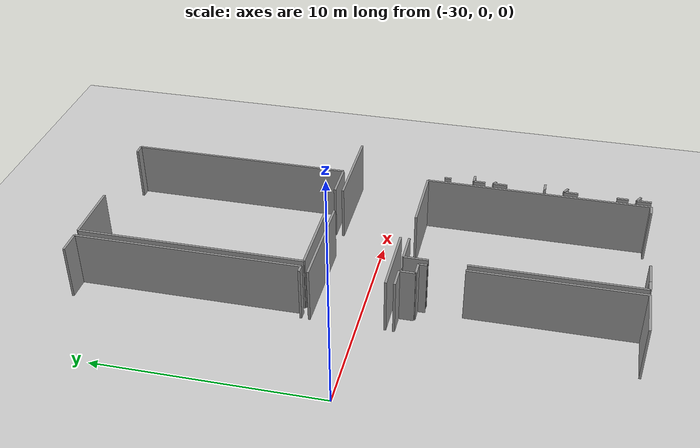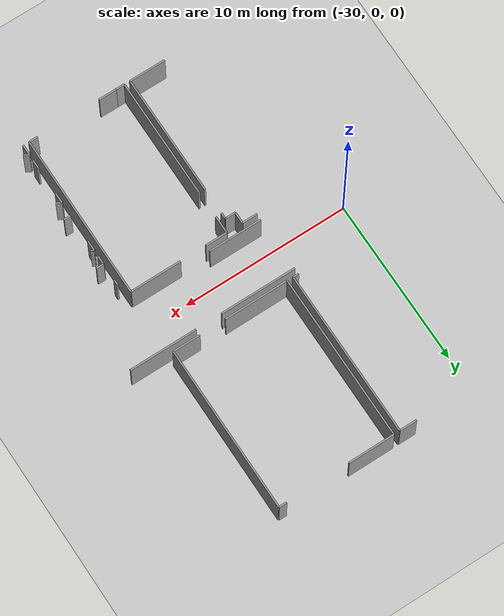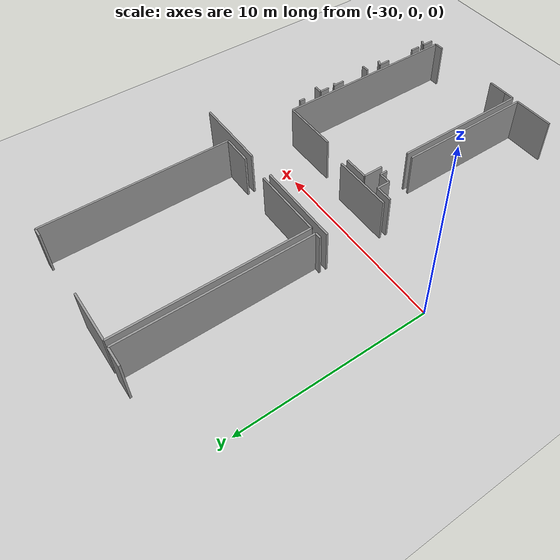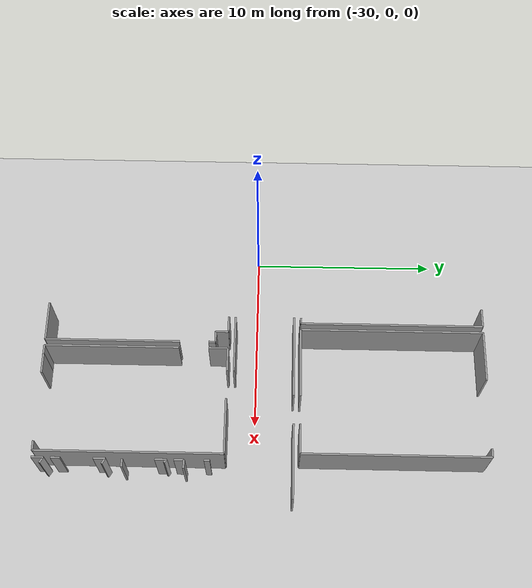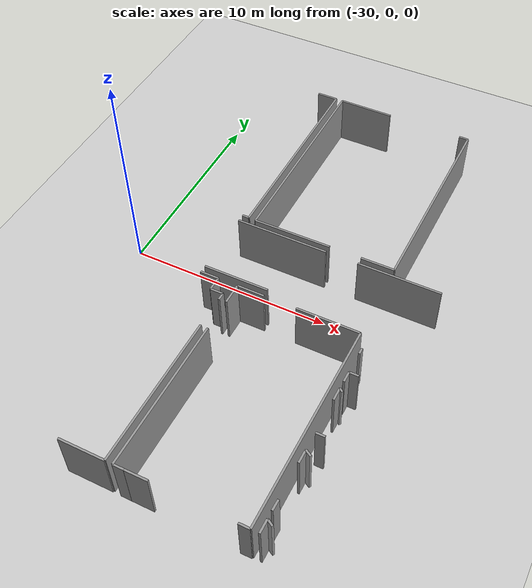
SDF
<sdf version="1.6">
 <world name="default">
  <model name="ground_plane">
   <static>1</static>
   <link name="link">
    <collision name="collision">
     <geometry><plane><normal>0 0 1</normal><size>100 100</size></plane></geometry>
     <surface><friction><ode><mu>100</mu><mu2>50</mu2></ode></friction></surface>
    </collision>
    <visual name="visual">
     <cast_shadows>0</cast_shadows>
     <geometry><plane><normal>0 0 1</normal><size>100 100</size></plane></geometry>
     <material>
      <script><uri>file://media/materials/scripts/gazebo.material</uri><name>Gazebo/Grey</name></script>
     </material>
    </visual>
   </link>
  </model>
  <model name="0510034691_Layout1">
   <static>1</static>
   <link name="Wall_22">
    <collision name="Wall_22_Collision">
     <geometry><box><size>0.912199089962 0.1 2.5</size></box></geometry>
     <pose>0.456099544981 0 1.25 0 0 0</pose>
    </collision>
    <visual name="Wall_22_Visual">
     <pose>0.456099544981 0 1.25 0 0 0</pose>
     <geometry><box><size>0.912199089962 0.1 2.5</size></box></geometry>
     <material>
      <script><uri>file://media/materials/scripts/gazebo.material</uri><name>Gazebo/Grey</name></script>
      <ambient>1 1 1 1</ambient>
     </material>
    </visual>
    <pose>31.0258267877 -13.9777320217 0 0 0 0.0</pose>
   </link>
   <link name="Wall_23">
    <collision name="Wall_23_Collision">
     <geometry><box><size>0.694730420194 0.1 2.5</size></box></geometry>
     <pose>0.347365210097 0 1.25 0 0 0</pose>
    </collision>
    <visual name="Wall_23_Visual">
     <pose>0.347365210097 0 1.25 0 0 0</pose>
     <geometry><box><size>0.694730420194 0.1 2.5</size></box></geometry>
     <material>
      <script><uri>file://media/materials/scripts/gazebo.material</uri><name>Gazebo/Grey</name></script>
      <ambient>1 1 1 1</ambient>
     </material>
    </visual>
    <pose>31.9380258776 -13.9777320217 0 0 0 -1.57079632679</pose>
   </link>
   <link name="Wall_24">
    <collision name="Wall_24_Collision">
     <geometry><box><size>0.626223340705 0.1 2.5</size></box></geometry>
     <pose>0.313111670353 0 1.25 0 0 0</pose>
    </collision>
    <visual name="Wall_24_Visual">
     <pose>0.313111670353 0 1.25 0 0 0</pose>
     <geometry><box><size>0.626223340705 0.1 2.5</size></box></geometry>
     <material>
      <script><uri>file://media/materials/scripts/gazebo.material</uri><name>Gazebo/Grey</name></script>
      <ambient>1 1 1 1</ambient>
     </material>
    </visual>
    <pose>31.9380258776 -14.6724624419 0 0 0 0.0</pose>
   </link>
   <link name="Wall_25">
    <collision name="Wall_25_Collision">
     <geometry><box><size>0.368082564376 0.1 2.5</size></box></geometry>
     <pose>0.184041282188 0 1.25 0 0 0</pose>
    </collision>
    <visual name="Wall_25_Visual">
     <pose>0.184041282188 0 1.25 0 0 0</pose>
     <geometry><box><size>0.368082564376 0.1 2.5</size></box></geometry>
     <material>
      <script><uri>file://media/materials/scripts/gazebo.material</uri><name>Gazebo/Grey</name></script>
      <ambient>1 1 1 1</ambient>
     </material>
    </visual>
    <pose>32.5642492183 -14.6724624419 0 0 0 -1.57079632679</pose>
   </link>
   <link name="Wall_26">
    <collision name="Wall_26_Collision">
     <geometry><box><size>7.34029843158 0.1 2.5</size></box></geometry>
     <pose>3.67014921579 0 1.25 0 0 0</pose>
    </collision>
    <visual name="Wall_26_Visual">
     <pose>3.67014921579 0 1.25 0 0 0</pose>
     <geometry><box><size>7.34029843158 0.1 2.5</size></box></geometry>
     <material>
      <script><uri>file://media/materials/scripts/gazebo.material</uri><name>Gazebo/Grey</name></script>
      <ambient>1 1 1 1</ambient>
     </material>
    </visual>
    <pose>32.5642492183 -16.6276468644 0 0 0 -1.57079632679</pose>
   </link>
   <link name="Wall_27">
    <collision name="Wall_27_Collision">
     <geometry><box><size>2.19337044663 0.1 2.5</size></box></geometry>
     <pose>1.09668522332 0 1.25 0 0 0</pose>
    </collision>
    <visual name="Wall_27_Visual">
     <pose>1.09668522332 0 1.25 0 0 0</pose>
     <geometry><box><size>2.19337044663 0.1 2.5</size></box></geometry>
     <material>
      <script><uri>file://media/materials/scripts/gazebo.material</uri><name>Gazebo/Grey</name></script>
      <ambient>1 1 1 1</ambient>
     </material>
    </visual>
    <pose>32.5642492183 -23.967945296 0 0 0 3.14159265359</pose>
   </link>
   <link name="Wall_29">
    <collision name="Wall_29_Collision">
     <geometry><box><size>0.520984264979 0.1 2.5</size></box></geometry>
     <pose>0.260492132489 0 1.25 0 0 0</pose>
    </collision>
    <visual name="Wall_29_Visual">
     <pose>0.260492132489 0 1.25 0 0 0</pose>
     <geometry><box><size>0.520984264979 0.1 2.5</size></box></geometry>
     <material>
      <script><uri>file://media/materials/scripts/gazebo.material</uri><name>Gazebo/Grey</name></script>
      <ambient>1 1 1 1</ambient>
     </material>
    </visual>
    <pose>33.4409873154 -23.972139607 0 0 0 3.14159265359</pose>
   </link>
   <link name="Wall_30">
    <collision name="Wall_30_Collision">
     <geometry><box><size>7.33279951193 0.1 2.5</size></box></geometry>
     <pose>3.66639975597 0 1.25 0 0 0</pose>
    </collision>
    <visual name="Wall_30_Visual">
     <pose>3.66639975597 0 1.25 0 0 0</pose>
     <geometry><box><size>7.33279951193 0.1 2.5</size></box></geometry>
     <material>
      <script><uri>file://media/materials/scripts/gazebo.material</uri><name>Gazebo/Grey</name></script>
      <ambient>1 1 1 1</ambient>
     </material>
    </visual>
    <pose>32.9200030504 -23.972139607 0 0 0 1.57079632679</pose>
   </link>
   <link name="Wall_31">
    <collision name="Wall_31_Collision">
     <geometry><box><size>1.05264495793 0.1 2.5</size></box></geometry>
     <pose>0.526322478965 0 1.25 0 0 0</pose>
    </collision>
    <visual name="Wall_31_Visual">
     <pose>0.526322478965 0 1.25 0 0 0</pose>
     <geometry><box><size>1.05264495793 0.1 2.5</size></box></geometry>
     <material>
      <script><uri>file://media/materials/scripts/gazebo.material</uri><name>Gazebo/Grey</name></script>
      <ambient>1 1 1 1</ambient>
     </material>
    </visual>
    <pose>32.9200030504 -15.0299956786 0 0 0 1.57079632679</pose>
   </link>
   <link name="Wall_32">
    <collision name="Wall_32_Collision">
     <geometry><box><size>1.32451257022 0.1 2.5</size></box></geometry>
     <pose>0.662256285111 0 1.25 0 0 0</pose>
    </collision>
    <visual name="Wall_32_Visual">
     <pose>0.662256285111 0 1.25 0 0 0</pose>
     <geometry><box><size>1.32451257022 0.1 2.5</size></box></geometry>
     <material>
      <script><uri>file://media/materials/scripts/gazebo.material</uri><name>Gazebo/Grey</name></script>
      <ambient>1 1 1 1</ambient>
     </material>
    </visual>
    <pose>32.9200030504 -13.9773507207 0 0 0 0.0</pose>
   </link>
   <link name="Wall_33">
    <collision name="Wall_33_Collision">
     <geometry><box><size>3.07735326267 0.1 2.5</size></box></geometry>
     <pose>1.53867663133 0 1.25 0 0 0</pose>
    </collision>
    <visual name="Wall_33_Visual">
     <pose>1.53867663133 0 1.25 0 0 0</pose>
     <geometry><box><size>3.07735326267 0.1 2.5</size></box></geometry>
     <material>
      <script><uri>file://media/materials/scripts/gazebo.material</uri><name>Gazebo/Grey</name></script>
      <ambient>1 1 1 1</ambient>
     </material>
    </visual>
    <pose>35.8243727599 -13.9773507207 0 0 0 0.0</pose>
   </link>
   <link name="Wall_34">
    <collision name="Wall_34_Collision">
     <geometry><box><size>9.99135717736 0.1 2.5</size></box></geometry>
     <pose>4.99567858868 0 1.25 0 0 0</pose>
    </collision>
    <visual name="Wall_34_Visual">
     <pose>4.99567858868 0 1.25 0 0 0</pose>
     <geometry><box><size>9.99135717736 0.1 2.5</size></box></geometry>
     <material>
      <script><uri>file://media/materials/scripts/gazebo.material</uri><name>Gazebo/Grey</name></script>
      <ambient>1 1 1 1</ambient>
     </material>
    </visual>
    <pose>38.9017260225 -13.9773507207 0 0 0 -1.57079632679</pose>
   </link>
   <link name="Wall_35">
    <collision name="Wall_35_Collision">
     <geometry><box><size>0.519840361982 0.1 2.5</size></box></geometry>
     <pose>0.259920180991 0 1.25 0 0 0</pose>
    </collision>
    <visual name="Wall_35_Visual">
     <pose>0.259920180991 0 1.25 0 0 0</pose>
     <geometry><box><size>0.519840361982 0.1 2.5</size></box></geometry>
     <material>
      <script><uri>file://media/materials/scripts/gazebo.material</uri><name>Gazebo/Grey</name></script>
      <ambient>1 1 1 1</ambient>
     </material>
    </visual>
    <pose>38.9017260225 -23.968707898 0 0 0 3.14159265359</pose>
   </link>
   <link name="Wall_36">
    <collision name="Wall_36_Collision">
     <geometry><box><size>1.07807048644 0.1 2.5</size></box></geometry>
     <pose>0.539035243222 0 1.25 0 0 0</pose>
    </collision>
    <visual name="Wall_36_Visual">
     <pose>0.539035243222 0 1.25 0 0 0</pose>
     <geometry><box><size>1.07807048644 0.1 2.5</size></box></geometry>
     <material>
      <script><uri>file://media/materials/scripts/gazebo.material</uri><name>Gazebo/Grey</name></script>
      <ambient>1 1 1 1</ambient>
     </material>
    </visual>
    <pose>34.5190523399 -23.968707898 0 0 0 -3.13840945283</pose>
   </link>
   <link name="Wall_39">
    <collision name="Wall_39_Collision">
     <geometry><box><size>1.03624901497 0.1 2.5</size></box></geometry>
     <pose>0.518124507486 0 1.25 0 0 0</pose>
    </collision>
    <visual name="Wall_39_Visual">
     <pose>0.518124507486 0 1.25 0 0 0</pose>
     <geometry><box><size>1.03624901497 0.1 2.5</size></box></geometry>
     <material>
      <script><uri>file://media/materials/scripts/gazebo.material</uri><name>Gazebo/Grey</name></script>
      <ambient>1 1 1 1</ambient>
     </material>
    </visual>
    <pose>30.3322402705 -0.0208444546125 0 0 0 0.0</pose>
   </link>
   <link name="Wall_40">
    <collision name="Wall_40_Collision">
     <geometry><box><size>9.98373115738 0.1 2.5</size></box></geometry>
     <pose>4.99186557869 0 1.25 0 0 0</pose>
    </collision>
    <visual name="Wall_40_Visual">
     <pose>4.99186557869 0 1.25 0 0 0</pose>
     <geometry><box><size>9.98373115738 0.1 2.5</size></box></geometry>
     <material>
      <script><uri>file://media/materials/scripts/gazebo.material</uri><name>Gazebo/Grey</name></script>
      <ambient>1 1 1 1</ambient>
     </material>
    </visual>
    <pose>31.3684892854 -0.0208444546125 0 0 0 -1.57079632679</pose>
   </link>
   <link name="Wall_41">
    <collision name="Wall_41_Collision">
     <geometry><box><size>0.337578484456 0.1 2.5</size></box></geometry>
     <pose>0.168789242228 0 1.25 0 0 0</pose>
    </collision>
    <visual name="Wall_41_Visual">
     <pose>0.168789242228 0 1.25 0 0 0</pose>
     <geometry><box><size>0.337578484456 0.1 2.5</size></box></geometry>
     <material>
      <script><uri>file://media/materials/scripts/gazebo.material</uri><name>Gazebo/Grey</name></script>
      <ambient>1 1 1 1</ambient>
     </material>
    </visual>
    <pose>31.3684892854 -10.004575612 0 0 0 3.14159265359</pose>
   </link>
   <link name="Wall_43">
    <collision name="Wall_43_Collision">
     <geometry><box><size>10.006863418 0.1 2.5</size></box></geometry>
     <pose>5.00343170899 0 1.25 0 0 0</pose>
    </collision>
    <visual name="Wall_43_Visual">
     <pose>5.00343170899 0 1.25 0 0 0</pose>
     <geometry><box><size>10.006863418 0.1 2.5</size></box></geometry>
     <material>
      <script><uri>file://media/materials/scripts/gazebo.material</uri><name>Gazebo/Grey</name></script>
      <ambient>1 1 1 1</ambient>
     </material>
    </visual>
    <pose>31.7353008465 -10.0282162739 0 0 0 1.57079632679</pose>
   </link>
   <link name="Wall_44">
    <collision name="Wall_44_Collision">
     <geometry><box><size>2.77854037978 0.1 2.5</size></box></geometry>
     <pose>1.38927018989 0 1.25 0 0 0</pose>
    </collision>
    <visual name="Wall_44_Visual">
     <pose>1.38927018989 0 1.25 0 0 0</pose>
     <geometry><box><size>2.77854037978 0.1 2.5</size></box></geometry>
     <material>
      <script><uri>file://media/materials/scripts/gazebo.material</uri><name>Gazebo/Grey</name></script>
      <ambient>1 1 1 1</ambient>
     </material>
    </visual>
    <pose>31.7353008465 -0.0213528559445 0 0 0 0.0</pose>
   </link>
   <link name="Wall_45">
    <collision name="Wall_45_Collision">
     <geometry><box><size>0.464933018125 0.1 2.5</size></box></geometry>
     <pose>0.232466509062 0 1.25 0 0 0</pose>
    </collision>
    <visual name="Wall_45_Visual">
     <pose>0.232466509062 0 1.25 0 0 0</pose>
     <geometry><box><size>0.464933018125 0.1 2.5</size></box></geometry>
     <material>
      <script><uri>file://media/materials/scripts/gazebo.material</uri><name>Gazebo/Grey</name></script>
      <ambient>1 1 1 1</ambient>
     </material>
    </visual>
    <pose>38.3604057043 -0.0213528559445 0 0 0 0.0</pose>
   </link>
   <link name="Wall_46">
    <collision name="Wall_46_Collision">
     <geometry><box><size>9.98970487303 0.1 2.5</size></box></geometry>
     <pose>4.99485243651 0 1.25 0 0 0</pose>
    </collision>
    <visual name="Wall_46_Visual">
     <pose>4.99485243651 0 1.25 0 0 0</pose>
     <geometry><box><size>9.98970487303 0.1 2.5</size></box></geometry>
     <material>
      <script><uri>file://media/materials/scripts/gazebo.material</uri><name>Gazebo/Grey</name></script>
      <ambient>1 1 1 1</ambient>
     </material>
    </visual>
    <pose>38.8253387224 -0.0213528559445 0 0 0 -1.57079632679</pose>
   </link>
   <link name="Wall_47">
    <collision name="Wall_47_Collision">
     <geometry><box><size>1.63934009507 0.1 2.5</size></box></geometry>
     <pose>0.819670047536 0 1.25 0 0 0</pose>
    </collision>
    <visual name="Wall_47_Visual">
     <pose>0.819670047536 0 1.25 0 0 0</pose>
     <geometry><box><size>1.63934009507 0.1 2.5</size></box></geometry>
     <material>
      <script><uri>file://media/materials/scripts/gazebo.material</uri><name>Gazebo/Grey</name></script>
      <ambient>1 1 1 1</ambient>
     </material>
    </visual>
    <pose>38.8253387224 -10.011057729 0 0 0 3.14159265359</pose>
   </link>
   <link name="Wall_48">
    <collision name="Wall_48_Collision">
     <geometry><box><size>3.86452371724 0.1 2.5</size></box></geometry>
     <pose>1.93226185862 0 1.25 0 0 0</pose>
    </collision>
    <visual name="Wall_48_Visual">
     <pose>1.93226185862 0 1.25 0 0 0</pose>
     <geometry><box><size>3.86452371724 0.1 2.5</size></box></geometry>
     <material>
      <script><uri>file://media/materials/scripts/gazebo.material</uri><name>Gazebo/Grey</name></script>
      <ambient>1 1 1 1</ambient>
     </material>
    </visual>
    <pose>35.5997864714 -10.011057729 0 0 0 -3.13715262357</pose>
   </link>
   <link name="Wall_54">
    <collision name="Wall_54_Collision">
     <geometry><box><size>4.56824016879 0.1 2.5</size></box></geometry>
     <pose>2.28412008439 0 1.25 0 0 0</pose>
    </collision>
    <visual name="Wall_54_Visual">
     <pose>2.28412008439 0 1.25 0 0 0</pose>
     <geometry><box><size>4.56824016879 0.1 2.5</size></box></geometry>
     <material>
      <script><uri>file://media/materials/scripts/gazebo.material</uri><name>Gazebo/Grey</name></script>
      <ambient>1 1 1 1</ambient>
     </material>
    </visual>
    <pose>31.0208698747 -10.374437581 0 0 0 0.0</pose>
   </link>
   <link name="Wall_55">
    <collision name="Wall_55_Collision">
     <geometry><box><size>4.05233991713 0.1 2.5</size></box></geometry>
     <pose>2.02616995857 0 1.25 0 0 0</pose>
    </collision>
    <visual name="Wall_55_Visual">
     <pose>2.02616995857 0 1.25 0 0 0</pose>
     <geometry><box><size>4.05233991713 0.1 2.5</size></box></geometry>
     <material>
      <script><uri>file://media/materials/scripts/gazebo.material</uri><name>Gazebo/Grey</name></script>
      <ambient>1 1 1 1</ambient>
     </material>
    </visual>
    <pose>37.1868883296 -10.374437581 0 0 0 0.0</pose>
   </link>
   <link name="Wall_61">
    <collision name="Wall_61_Collision">
     <geometry><box><size>3.20076768601 0.1 2.5</size></box></geometry>
     <pose>1.60038384301 0 1.25 0 0 0</pose>
    </collision>
    <visual name="Wall_61_Visual">
     <pose>1.60038384301 0 1.25 0 0 0</pose>
     <geometry><box><size>3.20076768601 0.1 2.5</size></box></geometry>
     <material>
      <script><uri>file://media/materials/scripts/gazebo.material</uri><name>Gazebo/Grey</name></script>
      <ambient>1 1 1 1</ambient>
     </material>
    </visual>
    <pose>34.2414652126 -13.6054551463 0 0 0 3.14159265359</pose>
   </link>
   <link name="Wall_77">
    <collision name="Wall_77_Collision">
     <geometry><box><size>0.63067185236 0.1 2.5</size></box></geometry>
     <pose>0.31533592618 0 1.25 0 0 0</pose>
    </collision>
    <visual name="Wall_77_Visual">
     <pose>0.31533592618 0 1.25 0 0 0</pose>
     <geometry><box><size>0.63067185236 0.1 2.5</size></box></geometry>
     <material>
      <script><uri>file://media/materials/scripts/gazebo.material</uri><name>Gazebo/Grey</name></script>
      <ambient>1 1 1 1</ambient>
     </material>
    </visual>
    <pose>39.2751468009 -17.563359516 0 0 0 1.57079632679</pose>
   </link>
   <link name="Wall_78">
    <collision name="Wall_78_Collision">
     <geometry><box><size>0.20753059758 0.1 2.5</size></box></geometry>
     <pose>0.10376529879 0 1.25 0 0 0</pose>
    </collision>
    <visual name="Wall_78_Visual">
     <pose>0.10376529879 0 1.25 0 0 0</pose>
     <geometry><box><size>0.20753059758 0.1 2.5</size></box></geometry>
     <material>
      <script><uri>file://media/materials/scripts/gazebo.material</uri><name>Gazebo/Grey</name></script>
      <ambient>1 1 1 1</ambient>
     </material>
    </visual>
    <pose>39.2751468009 -16.9326876636 0 0 0 -0.670819393699</pose>
   </link>
   <link name="Wall_89">
    <collision name="Wall_89_Collision">
     <geometry><box><size>0.520857164646 0.1 2.5</size></box></geometry>
     <pose>0.260428582323 0 1.25 0 0 0</pose>
    </collision>
    <visual name="Wall_89_Visual">
     <pose>0.260428582323 0 1.25 0 0 0</pose>
     <geometry><box><size>0.520857164646 0.1 2.5</size></box></geometry>
     <material>
      <script><uri>file://media/materials/scripts/gazebo.material</uri><name>Gazebo/Grey</name></script>
      <ambient>1 1 1 1</ambient>
     </material>
    </visual>
    <pose>39.2799766135 -16.5647321996 0 0 0 1.57079632679</pose>
   </link>
   <link name="Wall_90">
    <collision name="Wall_90_Collision">
     <geometry><box><size>0.449172576832 0.1 2.5</size></box></geometry>
     <pose>0.224586288416 0 1.25 0 0 0</pose>
    </collision>
    <visual name="Wall_90_Visual">
     <pose>0.224586288416 0 1.25 0 0 0</pose>
     <geometry><box><size>0.449172576832 0.1 2.5</size></box></geometry>
     <material>
      <script><uri>file://media/materials/scripts/gazebo.material</uri><name>Gazebo/Grey</name></script>
      <ambient>1 1 1 1</ambient>
     </material>
    </visual>
    <pose>39.2799766135 -16.043875035 0 0 0 0.0</pose>
   </link>
   <link name="Wall_93">
    <collision name="Wall_93_Collision">
     <geometry><box><size>0.300973588551 0.1 2.5</size></box></geometry>
     <pose>0.150486794275 0 1.25 0 0 0</pose>
    </collision>
    <visual name="Wall_93_Visual">
     <pose>0.150486794275 0 1.25 0 0 0</pose>
     <geometry><box><size>0.300973588551 0.1 2.5</size></box></geometry>
     <material>
      <script><uri>file://media/materials/scripts/gazebo.material</uri><name>Gazebo/Grey</name></script>
      <ambient>1 1 1 1</ambient>
     </material>
    </visual>
    <pose>39.2799766135 -14.9974579933 0 0 0 1.57079632679</pose>
   </link>
   <link name="Wall_98">
    <collision name="Wall_98_Collision">
     <geometry><box><size>0.636518467678 0.1 2.5</size></box></geometry>
     <pose>0.318259233839 0 1.25 0 0 0</pose>
    </collision>
    <visual name="Wall_98_Visual">
     <pose>0.318259233839 0 1.25 0 0 0</pose>
     <geometry><box><size>0.636518467678 0.1 2.5</size></box></geometry>
     <material>
      <script><uri>file://media/materials/scripts/gazebo.material</uri><name>Gazebo/Grey</name></script>
      <ambient>1 1 1 1</ambient>
     </material>
    </visual>
    <pose>39.2728589949 -20.75955159 0 0 0 1.57079632679</pose>
   </link>
   <link name="Wall_99">
    <collision name="Wall_99_Collision">
     <geometry><box><size>0.33988753655 0.1 2.5</size></box></geometry>
     <pose>0.169943768275 0 1.25 0 0 0</pose>
    </collision>
    <visual name="Wall_99_Visual">
     <pose>0.169943768275 0 1.25 0 0 0</pose>
     <geometry><box><size>0.33988753655 0.1 2.5</size></box></geometry>
     <material>
      <script><uri>file://media/materials/scripts/gazebo.material</uri><name>Gazebo/Grey</name></script>
      <ambient>1 1 1 1</ambient>
     </material>
    </visual>
    <pose>39.2728589949 -20.1230331223 0 0 0 -0.502957891705</pose>
   </link>
   <link name="Wall_110">
    <collision name="Wall_110_Collision">
     <geometry><box><size>0.426167416559 0.1 2.5</size></box></geometry>
     <pose>0.213083708279 0 1.25 0 0 0</pose>
    </collision>
    <visual name="Wall_110_Visual">
     <pose>0.213083708279 0 1.25 0 0 0</pose>
     <geometry><box><size>0.426167416559 0.1 2.5</size></box></geometry>
     <material>
      <script><uri>file://media/materials/scripts/gazebo.material</uri><name>Gazebo/Grey</name></script>
      <ambient>1 1 1 1</ambient>
     </material>
    </visual>
    <pose>39.2783243092 -19.2569714533 0 0 0 0.0</pose>
   </link>
   <link name="Wall_118">
    <collision name="Wall_118_Collision">
     <geometry><box><size>0.63829787234 0.1 2.5</size></box></geometry>
     <pose>0.31914893617 0 1.25 0 0 0</pose>
    </collision>
    <visual name="Wall_118_Visual">
     <pose>0.31914893617 0 1.25 0 0 0</pose>
     <geometry><box><size>0.63829787234 0.1 2.5</size></box></geometry>
     <material>
      <script><uri>file://media/materials/scripts/gazebo.material</uri><name>Gazebo/Grey</name></script>
      <ambient>1 1 1 1</ambient>
     </material>
    </visual>
    <pose>39.2713337909 -23.9802740283 0 0 0 1.57079632679</pose>
   </link>
   <link name="Wall_119">
    <collision name="Wall_119_Collision">
     <geometry><box><size>0.34896599472 0.1 2.5</size></box></geometry>
     <pose>0.17448299736 0 1.25 0 0 0</pose>
    </collision>
    <visual name="Wall_119_Visual">
     <pose>0.17448299736 0 1.25 0 0 0</pose>
     <geometry><box><size>0.34896599472 0.1 2.5</size></box></geometry>
     <material>
      <script><uri>file://media/materials/scripts/gazebo.material</uri><name>Gazebo/Grey</name></script>
      <ambient>1 1 1 1</ambient>
     </material>
    </visual>
    <pose>39.2713337909 -23.341976156 0 0 0 -0.527051980702</pose>
   </link>
   <link name="Wall_128">
    <collision name="Wall_128_Collision">
     <geometry><box><size>0.512408046652 0.1 2.5</size></box></geometry>
     <pose>0.256204023326 0 1.25 0 0 0</pose>
    </collision>
    <visual name="Wall_128_Visual">
     <pose>0.256204023326 0 1.25 0 0 0</pose>
     <geometry><box><size>0.512408046652 0.1 2.5</size></box></geometry>
     <material>
      <script><uri>file://media/materials/scripts/gazebo.material</uri><name>Gazebo/Grey</name></script>
      <ambient>1 1 1 1</ambient>
     </material>
    </visual>
    <pose>39.2734944966 -22.9805028089 0 0 0 1.55467269316</pose>
   </link>
   <pose>-56.5 12.4463356974 0 0 0 0</pose>
  </model>
 </world>
</sdf>
